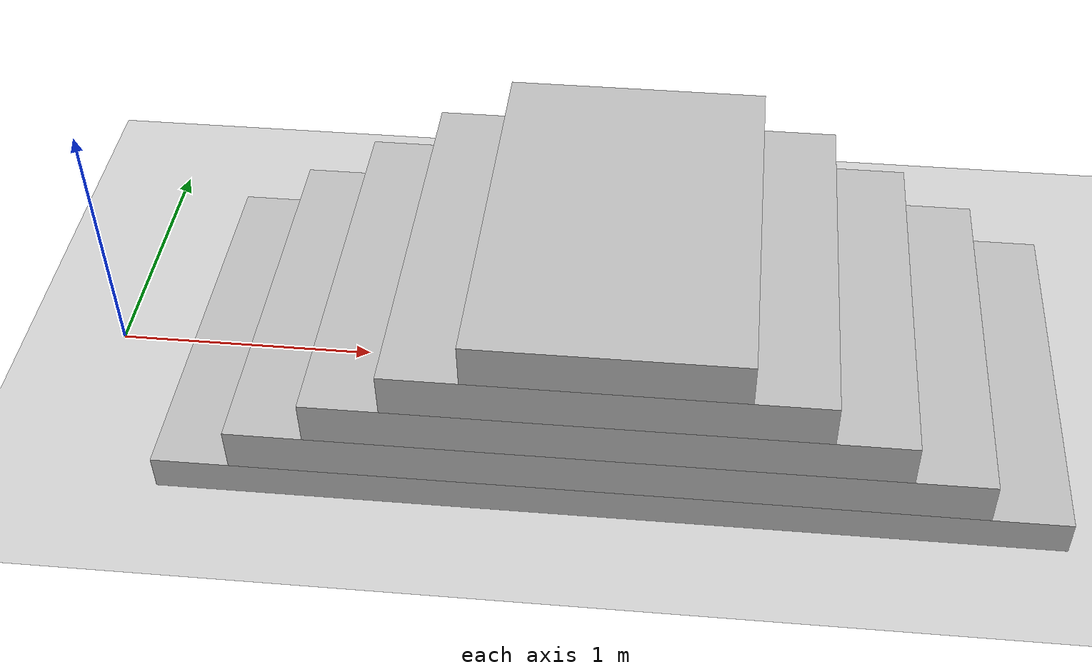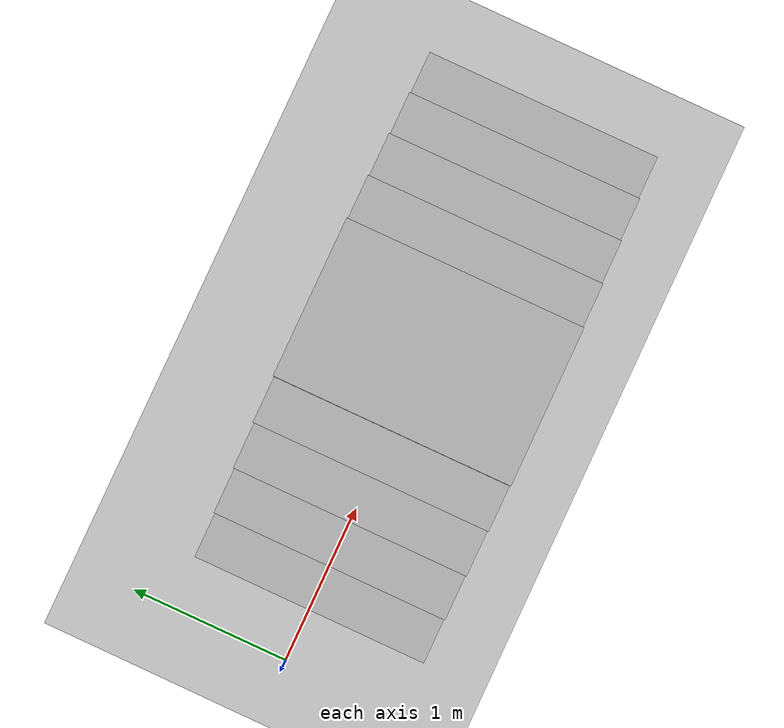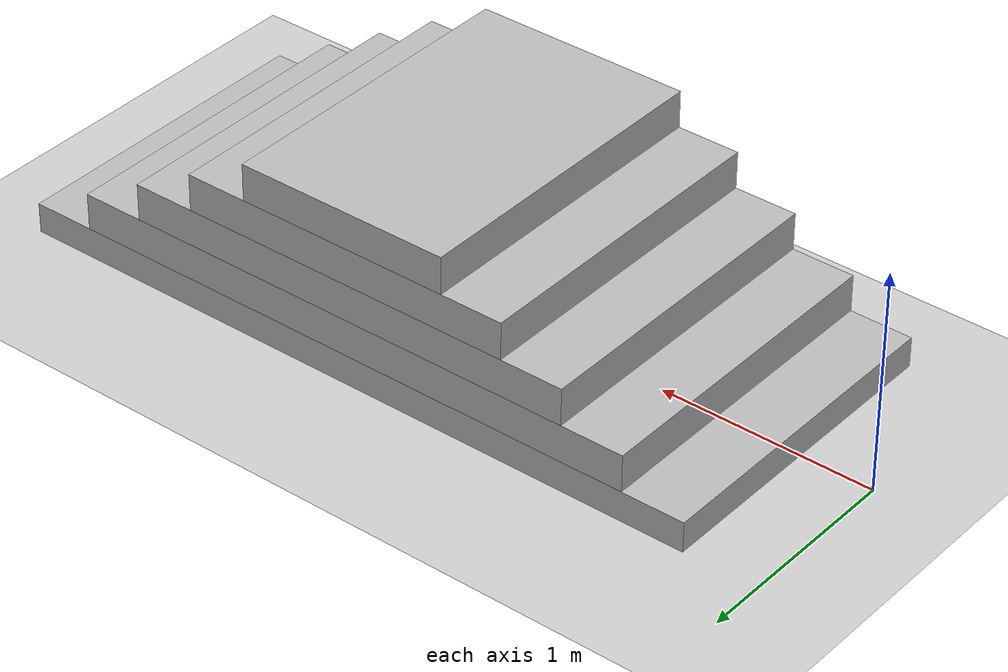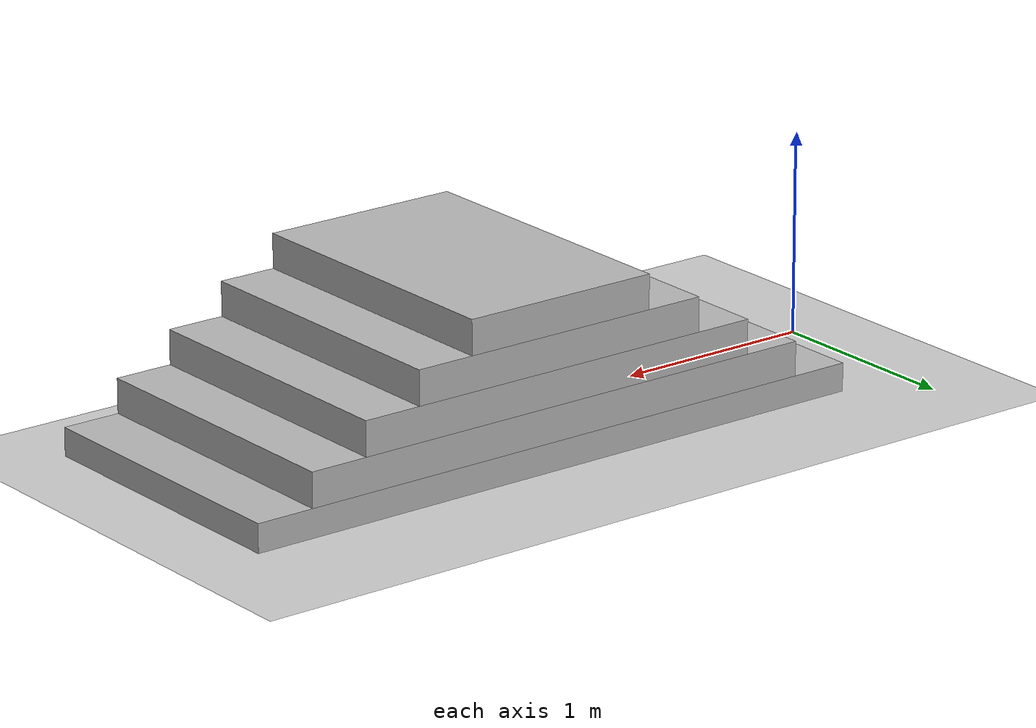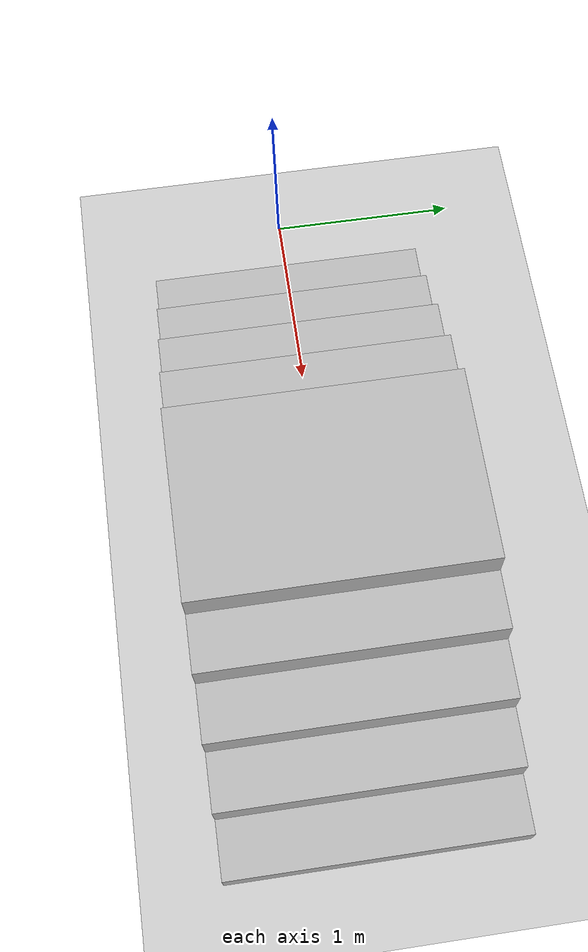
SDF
<?xml version="1.0" ?>
<sdf version="1.0">
  <world name="default">
    <include>
      <uri>model://ground_plane</uri>
    </include>
    <include>
      <uri>model://sun</uri>
    </include>
    <include>
      <uri>model://gazebo_worlds/models/lab_stairs_large</uri>
    </include>
    <physics type="ode">
      <gravity>0 0 -9.81</gravity>
    </physics>
  </world>
</sdf>

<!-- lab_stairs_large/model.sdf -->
<sdf version="1.4">
  <model name="lab_stairs_large">
    <pose>1 0 0.05 0 0 0</pose>
    <static>true</static>

     <link name="platform_b1">
      <pose>1 0 0 0 0 0</pose>
      <visual name="platform_b1_visual">
        <geometry>
          <box>
            <size>3.32 1.5 0.17</size>
          </box>
        </geometry>
      </visual>
      <collision name="platform_b1_collision">
        <geometry>
          <box>
            <size>3.32 1.5 0.17</size>
          </box>
        </geometry>
      </collision>
    </link>

    <link name="platform_b2">
      <pose>1 0 0.17 0 0 0</pose>
      <visual name="platform_b2_visual">
        <geometry>
          <box>
            <size>2.74 1.5 0.17</size>
          </box>
        </geometry>
      </visual>
      <collision name="platform_b2_collision">
        <geometry>
          <box>
            <size>2.74 1.5 0.17</size>
          </box>
        </geometry>
      </collision>
    </link>

    <link name="platform_b3">
      <pose>1 0 0.34 0 0 0</pose>
      <visual name="platform_b3_visual">
        <geometry>
          <box>
            <size>2.16 1.5 0.17</size>
          </box>
        </geometry>
      </visual>
      <collision name="platform_b3_collision">
        <geometry>
          <box>
            <size>2.16 1.5 0.17</size>
          </box>
        </geometry>
      </collision>
    </link>

    <link name="platform_b4">
      <pose>1 0 0.51 0 0 0</pose>
      <visual name="platform_b4_visual">
        <geometry>
          <box>
            <size>1.58 1.5 0.17</size>
          </box>
        </geometry>
      </visual>
      <collision name="platform_b4_collision">
        <geometry>
          <box>
            <size>1.58 1.5 0.17</size>
          </box>
        </geometry>
      </collision>
    </link>

    <link name="platform_b5">
      <pose>1 0 0.68 0 0 0</pose>
      <visual name="platform_b5_visual">
        <geometry>
          <box>
            <size>1 1.5 0.17</size>
          </box>
        </geometry>
      </visual>
      <collision name="platform_b5_collision">
        <geometry>
          <box>
            <size>1 1.5 0.17</size>
          </box>
        </geometry>
      </collision>
    </link>

  </model>
</sdf>
